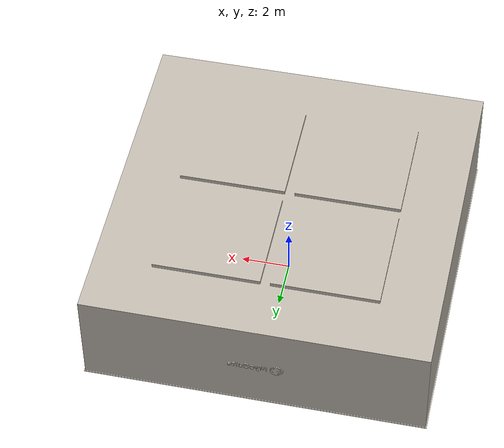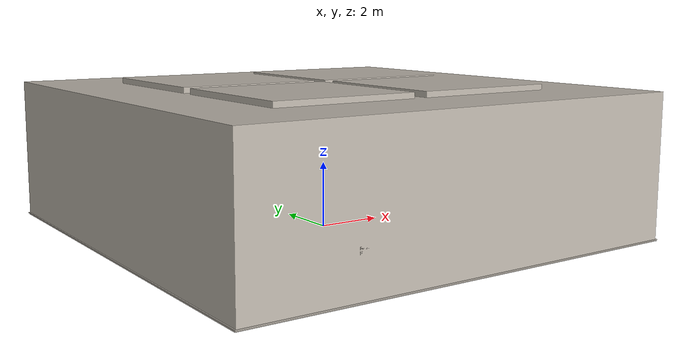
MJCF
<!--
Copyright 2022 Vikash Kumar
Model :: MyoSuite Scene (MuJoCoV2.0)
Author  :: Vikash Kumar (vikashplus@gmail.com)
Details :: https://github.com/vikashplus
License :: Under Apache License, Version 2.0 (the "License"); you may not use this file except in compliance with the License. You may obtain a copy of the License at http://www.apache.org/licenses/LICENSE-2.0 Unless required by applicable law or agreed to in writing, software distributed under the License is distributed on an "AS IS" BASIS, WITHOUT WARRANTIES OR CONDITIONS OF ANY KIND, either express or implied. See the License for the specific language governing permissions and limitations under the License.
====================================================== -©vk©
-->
<mujoco model="myosuite_scene">
    <!-- load texture and msh files -©vk©-->

    <compiler angle="radian" meshdir=".." texturedir=".."/>
    <asset>
        <!-- Scene -©vk©-->
        <texture name="textscene" type="2d" file="../myo_sim/scene/myosuite_scene.png"/>
        <material name="matscene" texture="textscene"/>
        <mesh name="meshscene" file="../myo_sim/scene/myosuite_scene_noFloor_noPedestal.msh" scale=".01 .01 .01"/>

        <!-- Floor -©vk©-->
        <texture name="texfloor" type="2d" height="1" width="1" file="../myo_sim/scene/floor0.png"/>
        <material name="matfloor" reflectance="0.01" texture="texfloor" texrepeat="1 1" texuniform="true"/>

        <!-- Logo -©vk©-->
        <texture name="textlogo" type="2d" file="../myo_sim/scene/myosuite_logo.png"/>
        <mesh name="logo" file="../myo_sim/scene/myosuite_logo.msh" scale="1 1 1"/>
        <material name="matlogo" texture="textlogo"/>

    </asset>

    <statistic extent="5" center="0 -1 1"/>

    <visual>
        <scale light=".05" framewidth=".005"/>
        <headlight ambient=".5 .5 .5" diffuse="0.50 0.50 0.50" specular="0.50 0.50 0.50"/>
        <global elevation="-15"/>
        <rgba actuator='.7 .4 .4 1' actuatorpositive='1 0 0 1' actuatornegative='.175 .1 .1 1'/>
    </visual>

    <!-- Add files to the world -©vk©-->
    <worldbody>
        <!-- indoor lights -©vk©-->
        <light directional="false" diffuse=".5 .5 .5" specular="0.25 0.25 0.25" pos="0 -3 3" dir="0 1 -1" mode="trackcom"/>
        <camera name="side_view" pos="-3 0 2.25" xyaxes="0 -1 0 1 0 2" mode="trackcom"/>
        <camera name="front_view" pos="0 -3 2.25" xyaxes="1 0 0 0 1 2" mode="trackcom"/>

        <geom name="floor" pos="0 0 0" size="7 7 .1" conaffinity="1" contype="1" type="plane" material="matfloor" condim="3"/>
        <geom type="mesh" pos="0 0 0" mesh="meshscene" material="matscene" conaffinity="0" contype="0"/>
        <geom type="mesh" mesh="logo" material="matlogo" group="1" conaffinity="0" contype="0" euler="1.57 0 0" pos="0 6.95 2.1"/>

    </worldbody>
</mujoco>
